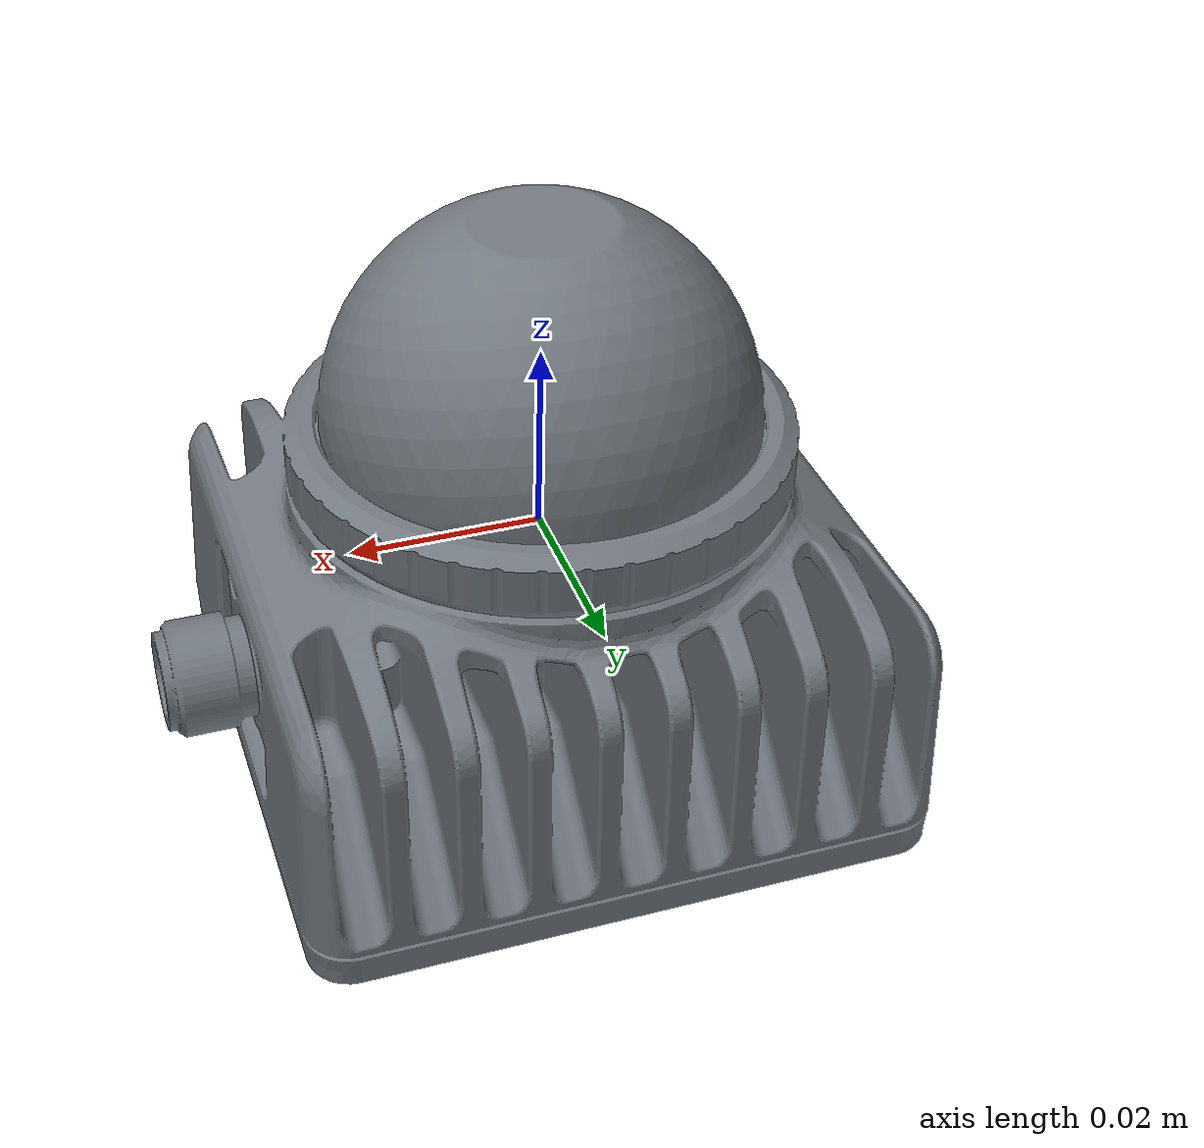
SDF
<?xml version="1.0"?>
<sdf version="1.9">
  <model name="livox_mid_360">
    <link name="link">
      <pose>0 0 0 0 0 0</pose>

      <!-- Inertial properties - 265g weight -->
      <inertial>
        <pose>0 0 0 1.5707 0 0</pose>
        <mass>0.265</mass>
        <inertia>
          <ixx>0.00028</ixx>
          <ixy>0</ixy>
          <ixz>0</ixz>
          <iyy>0.00028</iyy>
          <iyz>0</iyz>
          <izz>0.00018</izz>
        </inertia>
      </inertial>

      <!-- Collision geometry -->
      <collision name="collision">
        <pose>0 0 0 1.5707 0 0</pose>
        <geometry>
          <mesh>
            <uri>model://livox_mid_360/meshes/Livox_Mid_360.dae</uri>
          </mesh>
        </geometry>
      </collision>

      <!-- Visual geometry -->
      <visual name="visual">
        <pose>0 0 0 1.5707 0 0</pose>
        <geometry>
          <mesh>
            <uri>model://livox_mid_360/meshes/Livox_Mid_360.dae</uri>
          </mesh>
        </geometry>
      </visual>

      <!-- IMU Sensor - ICM40609 Built-in -->
      <sensor name='imu_sensor' type='imu'>
        <pose>0 0 0 0 0 0</pose>
        <topic>imu</topic>
        <update_rate>100</update_rate>
        <enable_metrics>false</enable_metrics>
        <imu>
          <orientation_reference_frame>
            <localization>CUSTOM</localization>
            <custom_rpy>0 0 0</custom_rpy>
            <grav_dir_x>0 0 -1</grav_dir_x>
          </orientation_reference_frame>

          <!-- Angular velocity (Gyroscope) - ICM40609 specs -->
          <angular_velocity>
            <x>
              <noise type='gaussian'>
                <mean>0</mean>
                <stddev>0.00069813</stddev> <!-- ~0.004 deg/s/√Hz * √100Hz -->
                <bias_mean>0.0017453</bias_mean> <!-- ~0.1 deg/s bias -->
                <bias_stddev>0.00087266</bias_stddev>
                <dynamic_bias_stddev>0.00017453</dynamic_bias_stddev>
                <dynamic_bias_correlation_time>1000.0</dynamic_bias_correlation_time>
                <precision>0.0001</precision>
              </noise>
            </x>
            <y>
              <noise type='gaussian'>
                <mean>0</mean>
                <stddev>0.00069813</stddev>
                <bias_mean>0.0017453</bias_mean>
                <bias_stddev>0.00087266</bias_stddev>
                <dynamic_bias_stddev>0.00017453</dynamic_bias_stddev>
                <dynamic_bias_correlation_time>1000.0</dynamic_bias_correlation_time>
                <precision>0.0001</precision>
              </noise>
            </y>
            <z>
              <noise type='gaussian'>
                <mean>0</mean>
                <stddev>0.00069813</stddev>
                <bias_mean>0.0017453</bias_mean>
                <bias_stddev>0.00087266</bias_stddev>
                <dynamic_bias_stddev>0.00017453</dynamic_bias_stddev>
                <dynamic_bias_correlation_time>1000.0</dynamic_bias_correlation_time>
                <precision>0.0001</precision>
              </noise>
            </z>
          </angular_velocity>

          <!-- Linear acceleration (Accelerometer) - ICM40609 specs -->
          <linear_acceleration>
            <x>
              <noise type='gaussian'>
                <mean>0</mean>
                <stddev>0.0196</stddev> <!-- ~0.2 mg/√Hz * √100Hz -->
                <bias_mean>0.0981</bias_mean> <!-- ~0.01 m/s² bias -->
                <bias_stddev>0.0490</bias_stddev>
                <dynamic_bias_stddev>0.0098</dynamic_bias_stddev>
                <dynamic_bias_correlation_time>300.0</dynamic_bias_correlation_time>
                <precision>0.001</precision>
              </noise>
            </x>
            <y>
              <noise type='gaussian'>
                <mean>0</mean>
                <stddev>0.0196</stddev>
                <bias_mean>0.0981</bias_mean>
                <bias_stddev>0.0490</bias_stddev>
                <dynamic_bias_stddev>0.0098</dynamic_bias_stddev>
                <dynamic_bias_correlation_time>300.0</dynamic_bias_correlation_time>
                <precision>0.001</precision>
              </noise>
            </y>
            <z>
              <noise type='gaussian'>
                <mean>0</mean>
                <stddev>0.0196</stddev>
                <bias_mean>0.0981</bias_mean>
                <bias_stddev>0.0490</bias_stddev>
                <dynamic_bias_stddev>0.0098</dynamic_bias_stddev>
                <dynamic_bias_correlation_time>300.0</dynamic_bias_correlation_time>
                <precision>0.001</precision>
              </noise>
            </z>
          </linear_acceleration>

          <enable_orientation>true</enable_orientation>
        </imu>
      </sensor>

      <!-- LiDAR Sensor - Livox MID-360 -->
      <sensor name='gpu_lidar' type='gpu_lidar'>
        <pose>0 0 0 0 0 0</pose>
        <topic>lidar</topic>
        <update_rate>10</update_rate> <!-- Frame rate: 10 Hz -->
        <enable_metrics>false</enable_metrics>
        <lidar>
          <scan>
            <!-- Horizontal: 360° coverage -->
            <horizontal>
              <samples>240</samples>
              <resolution>1</resolution>
              <min_angle>-3.1415926536</min_angle>
              <max_angle>3.1415926536</max_angle>
            </horizontal>

            <!-- Vertical: -7° to +52° (59° total FOV) -->
            <vertical>
              <samples>64</samples>
              <min_angle>-0.12217304764</min_angle>
              <max_angle>0.90757121103</max_angle>
              <resolution>1</resolution>
            </vertical>
          </scan>

          <!-- Detection range: 0.1m to 40m @ 10% reflectivity (70m @ 80%) -->
          <range>
            <min>0.1</min>
            <max>40.0</max>
            <resolution>0.001</resolution> <!-- 1mm resolution for ≤2cm precision -->
          </range>

          <!-- Range precision: ≤2cm @ 10m -->
          <noise>
            <type>gaussian</type>
            <mean>0</mean>
            <stddev>0.015</stddev> <!-- 1.5cm standard deviation -->
          </noise>

          <visibility_mask>4294967295</visibility_mask>
        </lidar>
      </sensor>

    </link>
  </model>
</sdf>
